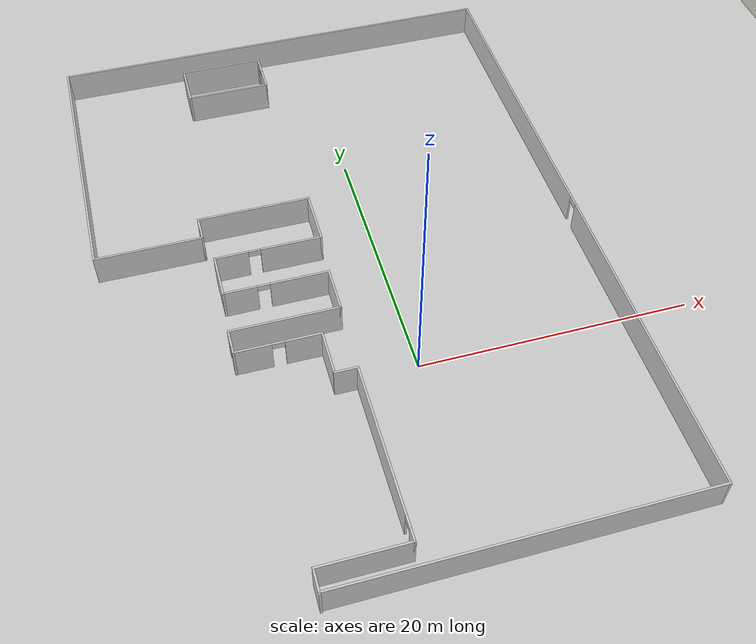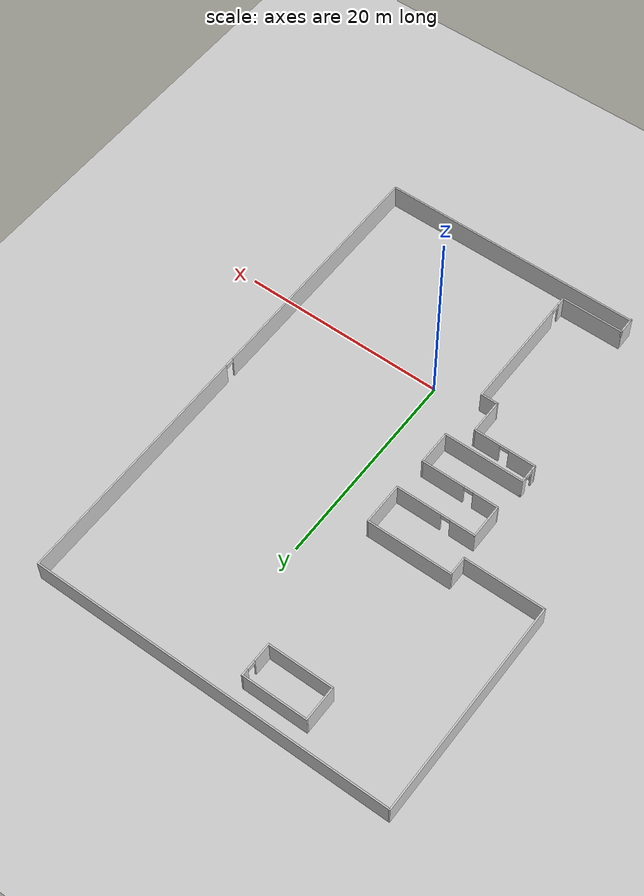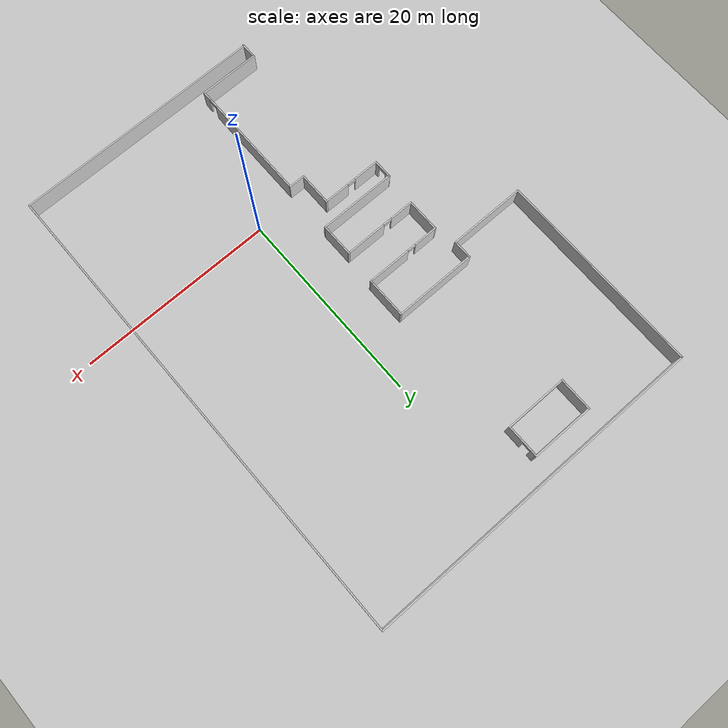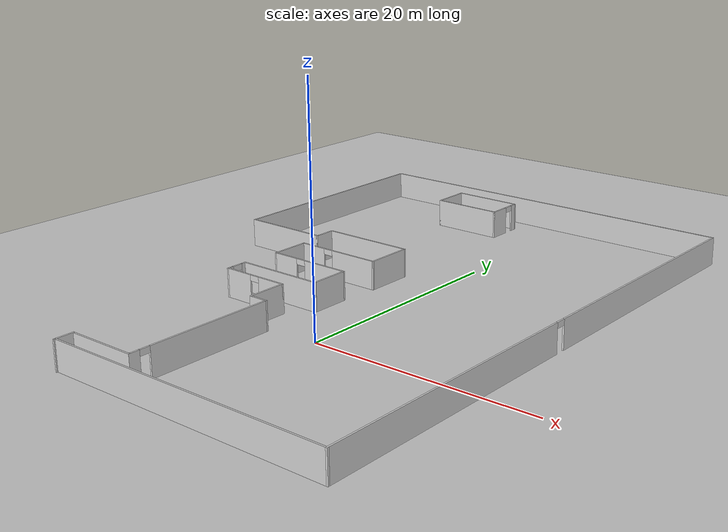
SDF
<sdf version="1.7">
 <world name="default">
  <plugin name="ignition::gazebo::systems::Physics" filename="ignition-gazebo-physics-system"/>
  <plugin name="ignition::gazebo::systems::UserCommands" filename="ignition-gazebo-user-commands-system"/>
  <plugin name="ignition::gazebo::systems::SceneBroadcaster" filename="ignition-gazebo-scene-broadcaster-system"/>
  <plugin name="ignition::gazebo::systems::Contact" filename="ignition-gazebo-contact-system"/>
  <light name="sun" type="directional">
   <pose>0 0 10 0 -0 0</pose>
   <diffuse>0.8 0.8 0.8 1</diffuse>
   <specular>0.2 0.2 0.2 1</specular>
   <attenuation>
    <range>1000</range>
    <constant>0.9</constant>
    <linear>0.01</linear>
    <quadratic>0.001</quadratic>
   </attenuation>
   <direction>-0.5 0.1 -0.9</direction>
   <spot><inner_angle>0</inner_angle><outer_angle>0</outer_angle><falloff>0</falloff></spot>
  </light>
  <model name="ground_plane">
   <static>1</static>
   <link name="link">
    <collision name="collision">
     <geometry><plane><normal>0 0 1</normal><size>100 100</size></plane></geometry>
     <surface><friction><ode><mu>100</mu><mu2>50</mu2></ode></friction></surface>
    </collision>
    <visual name="visual">
     <cast_shadows>0</cast_shadows>
     <geometry><plane><normal>0 0 1</normal><size>100 100</size></plane></geometry>
     <material>
      <ambient>0.8 0.8 0.8 1</ambient>
      <diffuse>0.8 0.8 0.8 1</diffuse>
      <specular>0.8 0.8 0.8 1</specular>
     </material>
    </visual>
   </link>
  </model>
  <gravity>0 0 -9.8</gravity>
  <magnetic_field>6e-06 2.3e-05 -4.2e-05</magnetic_field>
  <atmosphere type="adiabatic"/>
  <physics type="ode">
   <max_step_size>0.001</max_step_size>
   <real_time_factor>1</real_time_factor>
   <real_time_update_rate>1000</real_time_update_rate>
  </physics>
  <scene><ambient>0.4 0.4 0.4 1</ambient><background>0.7 0.7 0.7 1</background><shadows>1</shadows></scene>
  <spherical_coordinates>
   <surface_model>EARTH_WGS84</surface_model>
   <latitude_deg>0</latitude_deg>
   <longitude_deg>0</longitude_deg>
   <elevation>0</elevation>
   <heading_deg>0</heading_deg>
  </spherical_coordinates>
  <model name="CDL_v1">
   <pose>-2.57885 9.76492 0 0 -0 0</pose>
   <link name="Wall_0">
    <collision name="Wall_0_Collision">
     <geometry><box><size>1.75 0.15 2.5</size></box></geometry>
     <pose>0 0 1.25 0 -0 0</pose>
    </collision>
    <visual name="Wall_0_Visual">
     <pose>0 0 1.25 0 -0 0</pose>
     <geometry><box><size>1.75 0.15 2.5</size></box></geometry>
     <material>
      <ambient>0.8 0.8 0.8 1</ambient>
      <diffuse>0.8 0.8 0.8 1</diffuse>
      <specular>0.8 0.8 0.8 1</specular>
      <ambient>1 1 1 1</ambient>
     </material>
     <meta><layer>0</layer></meta>
    </visual>
    <pose>-7.97485 -24.0501 0 0 -0 1.5708</pose>
   </link>
   <link name="Wall_1">
    <collision name="Wall_1_Collision">
     <geometry><box><size>6.25 0.15 2.5</size></box></geometry>
     <pose>0 0 1.25 0 -0 0</pose>
    </collision>
    <visual name="Wall_1_Visual">
     <pose>0 0 1.25 0 -0 0</pose>
     <geometry><box><size>6.25 0.15 2.5</size></box></geometry>
     <material>
      <ambient>0.8 0.8 0.8 1</ambient>
      <diffuse>0.8 0.8 0.8 1</diffuse>
      <specular>0.8 0.8 0.8 1</specular>
      <ambient>1 1 1 1</ambient>
     </material>
     <meta><layer>0</layer></meta>
    </visual>
    <pose>-4.92485 -23.2501 0 0 -0 0</pose>
   </link>
   <link name="Wall_10">
    <collision name="Wall_10_Collision">
     <geometry><box><size>3.5 0.15 2.5</size></box></geometry>
     <pose>0 0 1.25 0 -0 0</pose>
    </collision>
    <visual name="Wall_10_Visual">
     <pose>0 0 1.25 0 -0 0</pose>
     <geometry><box><size>3.5 0.15 2.5</size></box></geometry>
     <material>
      <ambient>0.8 0.8 0.8 1</ambient>
      <diffuse>0.8 0.8 0.8 1</diffuse>
      <specular>0.8 0.8 0.8 1</specular>
      <ambient>1 1 1 1</ambient>
     </material>
     <meta><layer>0</layer></meta>
    </visual>
    <pose>-9.32485 -0.175087 0 0 -0 1.5708</pose>
   </link>
   <link name="Wall_11">
    <pose>-5.39985 1.49991 0 0 -0 0</pose>
    <visual name="Wall_11_Visual_0">
     <pose>-2.73904 0 1.25 0 -0 0</pose>
     <geometry><box><size>2.52192 0.15 2.5</size></box></geometry>
     <material>
      <ambient>0.8 0.8 0.8 1</ambient>
      <diffuse>0.8 0.8 0.8 1</diffuse>
      <specular>0.8 0.8 0.8 1</specular>
      <ambient>1 1 1 1</ambient>
     </material>
     <meta><layer>0</layer></meta>
    </visual>
    <collision name="Wall_11_Collision_0">
     <geometry><box><size>2.52192 0.15 2.5</size></box></geometry>
     <pose>-2.73904 0 1.25 0 -0 0</pose>
    </collision>
    <visual name="Wall_11_Visual_1">
     <pose>1.71096 0 1.25 0 -0 0</pose>
     <geometry><box><size>4.57808 0.15 2.5</size></box></geometry>
     <material>
      <ambient>0.8 0.8 0.8 1</ambient>
      <diffuse>0.8 0.8 0.8 1</diffuse>
      <specular>0.8 0.8 0.8 1</specular>
      <ambient>1 1 1 1</ambient>
     </material>
     <meta><layer>0</layer></meta>
    </visual>
    <collision name="Wall_11_Collision_1">
     <geometry><box><size>4.57808 0.15 2.5</size></box></geometry>
     <pose>1.71096 0 1.25 0 -0 0</pose>
    </collision>
    <visual name="Wall_11_Visual_2">
     <pose>-1.02808 0 2.25 0 -0 0</pose>
     <geometry><box><size>0.9 0.15 0.5</size></box></geometry>
     <material>
      <ambient>0.8 0.8 0.8 1</ambient>
      <diffuse>0.8 0.8 0.8 1</diffuse>
      <specular>0.8 0.8 0.8 1</specular>
      <ambient>1 1 1 1</ambient>
     </material>
     <meta><layer>0</layer></meta>
    </visual>
    <collision name="Wall_11_Collision_2">
     <geometry><box><size>0.9 0.15 0.5</size></box></geometry>
     <pose>-1.02808 0 2.25 0 -0 0</pose>
    </collision>
   </link>
   <link name="Wall_12">
    <collision name="Wall_12_Collision">
     <geometry><box><size>4.25 0.15 2.5</size></box></geometry>
     <pose>0 0 1.25 0 -0 0</pose>
    </collision>
    <visual name="Wall_12_Visual">
     <pose>0 0 1.25 0 -0 0</pose>
     <geometry><box><size>4.25 0.15 2.5</size></box></geometry>
     <material>
      <ambient>0.8 0.8 0.8 1</ambient>
      <diffuse>0.8 0.8 0.8 1</diffuse>
      <specular>0.8 0.8 0.8 1</specular>
      <ambient>1 1 1 1</ambient>
     </material>
     <meta><layer>0</layer></meta>
    </visual>
    <pose>-1.47486 3.54991 0 0 -0 1.5708</pose>
   </link>
   <link name="Wall_13">
    <collision name="Wall_13_Collision">
     <geometry><box><size>8.5 0.15 2.5</size></box></geometry>
     <pose>0 0 1.25 0 -0 0</pose>
    </collision>
    <visual name="Wall_13_Visual">
     <pose>0 0 1.25 0 -0 0</pose>
     <geometry><box><size>8.5 0.15 2.5</size></box></geometry>
     <material>
      <ambient>0.8 0.8 0.8 1</ambient>
      <diffuse>0.8 0.8 0.8 1</diffuse>
      <specular>0.8 0.8 0.8 1</specular>
      <ambient>1 1 1 1</ambient>
     </material>
     <meta><layer>0</layer></meta>
    </visual>
    <pose>-5.64985 5.59991 0 0 -0 3.14159</pose>
   </link>
   <link name="Wall_14">
    <collision name="Wall_14_Collision">
     <geometry><box><size>2 0.15 2.5</size></box></geometry>
     <pose>0 0 1.25 0 -0 0</pose>
    </collision>
    <visual name="Wall_14_Visual">
     <pose>0 0 1.25 0 -0 0</pose>
     <geometry><box><size>2 0.15 2.5</size></box></geometry>
     <material>
      <ambient>0.8 0.8 0.8 1</ambient>
      <diffuse>0.8 0.8 0.8 1</diffuse>
      <specular>0.8 0.8 0.8 1</specular>
      <ambient>1 1 1 1</ambient>
     </material>
     <meta><layer>0</layer></meta>
    </visual>
    <pose>-9.82485 4.67491 0 0 -0 -1.5708</pose>
   </link>
   <link name="Wall_15">
    <collision name="Wall_15_Collision">
     <geometry><box><size>8 0.15 2.5</size></box></geometry>
     <pose>0 0 1.25 0 -0 0</pose>
    </collision>
    <visual name="Wall_15_Visual">
     <pose>0 0 1.25 0 -0 0</pose>
     <geometry><box><size>8 0.15 2.5</size></box></geometry>
     <material>
      <ambient>0.8 0.8 0.8 1</ambient>
      <diffuse>0.8 0.8 0.8 1</diffuse>
      <specular>0.8 0.8 0.8 1</specular>
      <ambient>1 1 1 1</ambient>
     </material>
     <meta><layer>0</layer></meta>
    </visual>
    <pose>-13.75 3.75 0 0 -0 3.14157</pose>
   </link>
   <link name="Wall_16">
    <collision name="Wall_16_Collision">
     <geometry><box><size>21.25 0.15 2.5</size></box></geometry>
     <pose>0 0 1.25 0 -0 0</pose>
    </collision>
    <visual name="Wall_16_Visual">
     <pose>0 0 1.25 0 -0 0</pose>
     <geometry><box><size>21.25 0.15 2.5</size></box></geometry>
     <material>
      <ambient>0.8 0.8 0.8 1</ambient>
      <diffuse>0.8 0.8 0.8 1</diffuse>
      <specular>0.8 0.8 0.8 1</specular>
      <ambient>1 1 1 1</ambient>
     </material>
     <meta><layer>0</layer></meta>
    </visual>
    <pose>-17.6751 14.3001 0 0 -0 1.5708</pose>
   </link>
   <link name="Wall_17">
    <collision name="Wall_17_Collision">
     <geometry><box><size>35.5 0.15 2.5</size></box></geometry>
     <pose>0 0 1.25 0 -0 0</pose>
    </collision>
    <visual name="Wall_17_Visual">
     <pose>0 0 1.25 0 -0 0</pose>
     <geometry><box><size>35.5 0.15 2.5</size></box></geometry>
     <material>
      <ambient>0.8 0.8 0.8 1</ambient>
      <diffuse>0.8 0.8 0.8 1</diffuse>
      <specular>0.8 0.8 0.8 1</specular>
      <ambient>1 1 1 1</ambient>
     </material>
     <meta><layer>0</layer></meta>
    </visual>
    <pose>-1e-06 24.85 0 0 -0 -5e-06</pose>
   </link>
   <link name="Wall_18">
    <pose>17.6751 0.049912 0 0 -0 -1.5708</pose>
    <visual name="Wall_18_Visual_0">
     <pose>-12.621 0 1.25 0 -0 0</pose>
     <geometry><box><size>24.5079 0.15 2.5</size></box></geometry>
     <material>
      <ambient>0.8 0.8 0.8 1</ambient>
      <diffuse>0.8 0.8 0.8 1</diffuse>
      <specular>0.8 0.8 0.8 1</specular>
      <ambient>1 1 1 1</ambient>
     </material>
     <meta><layer>0</layer></meta>
    </visual>
    <collision name="Wall_18_Collision_0">
     <geometry><box><size>24.5079 0.15 2.5</size></box></geometry>
     <pose>-12.621 0 1.25 0 -0 0</pose>
    </collision>
    <visual name="Wall_18_Visual_1">
     <pose>12.704 0 1.25 0 -0 0</pose>
     <geometry><box><size>24.3421 0.15 2.5</size></box></geometry>
     <material>
      <ambient>0.8 0.8 0.8 1</ambient>
      <diffuse>0.8 0.8 0.8 1</diffuse>
      <specular>0.8 0.8 0.8 1</specular>
      <ambient>1 1 1 1</ambient>
     </material>
     <meta><layer>0</layer></meta>
    </visual>
    <collision name="Wall_18_Collision_1">
     <geometry><box><size>24.3421 0.15 2.5</size></box></geometry>
     <pose>12.704 0 1.25 0 -0 0</pose>
    </collision>
    <visual name="Wall_18_Visual_2">
     <pose>0.082915 0 2.25 0 -0 0</pose>
     <geometry><box><size>0.9 0.15 0.5</size></box></geometry>
     <material>
      <ambient>0.8 0.8 0.8 1</ambient>
      <diffuse>0.8 0.8 0.8 1</diffuse>
      <specular>0.8 0.8 0.8 1</specular>
      <ambient>1 1 1 1</ambient>
     </material>
     <meta><layer>0</layer></meta>
    </visual>
    <collision name="Wall_18_Collision_2">
     <geometry><box><size>0.9 0.15 0.5</size></box></geometry>
     <pose>0.082915 0 2.25 0 -0 0</pose>
    </collision>
   </link>
   <link name="Wall_19">
    <collision name="Wall_19_Collision">
     <geometry><box><size>25.75 0.15 2.5</size></box></geometry>
     <pose>0 0 1.25 0 -0 0</pose>
    </collision>
    <visual name="Wall_19_Visual">
     <pose>0 0 1.25 0 -0 0</pose>
     <geometry><box><size>25.75 0.15 2.5</size></box></geometry>
     <material>
      <ambient>0.8 0.8 0.8 1</ambient>
      <diffuse>0.8 0.8 0.8 1</diffuse>
      <specular>0.8 0.8 0.8 1</specular>
      <ambient>1 1 1 1</ambient>
     </material>
     <meta><layer>0</layer></meta>
    </visual>
    <pose>4.87514 -24.7501 0 0 -0 3.14159</pose>
   </link>
   <link name="Wall_2">
    <pose>-1.87485 -16.8251 0 0 -0 1.5708</pose>
    <visual name="Wall_2_Visual_0">
     <pose>-6.02926 0 1.25 0 -0 0</pose>
     <geometry><box><size>0.941485 0.15 2.5</size></box></geometry>
     <material>
      <ambient>0.8 0.8 0.8 1</ambient>
      <diffuse>0.8 0.8 0.8 1</diffuse>
      <specular>0.8 0.8 0.8 1</specular>
      <ambient>1 1 1 1</ambient>
     </material>
     <meta><layer>0</layer></meta>
    </visual>
    <collision name="Wall_2_Collision_0">
     <geometry><box><size>0.941485 0.15 2.5</size></box></geometry>
     <pose>-6.02926 0 1.25 0 -0 0</pose>
    </collision>
    <visual name="Wall_2_Visual_1">
     <pose>0.920742 0 1.25 0 -0 0</pose>
     <geometry><box><size>11.1585 0.15 2.5</size></box></geometry>
     <material>
      <ambient>0.8 0.8 0.8 1</ambient>
      <diffuse>0.8 0.8 0.8 1</diffuse>
      <specular>0.8 0.8 0.8 1</specular>
      <ambient>1 1 1 1</ambient>
     </material>
     <meta><layer>0</layer></meta>
    </visual>
    <collision name="Wall_2_Collision_1">
     <geometry><box><size>11.1585 0.15 2.5</size></box></geometry>
     <pose>0.920742 0 1.25 0 -0 0</pose>
    </collision>
    <visual name="Wall_2_Visual_2">
     <pose>-5.10851 0 2.25 0 -0 0</pose>
     <geometry><box><size>0.9 0.15 0.5</size></box></geometry>
     <material>
      <ambient>0.8 0.8 0.8 1</ambient>
      <diffuse>0.8 0.8 0.8 1</diffuse>
      <specular>0.8 0.8 0.8 1</specular>
      <ambient>1 1 1 1</ambient>
     </material>
     <meta><layer>0</layer></meta>
    </visual>
    <collision name="Wall_2_Collision_2">
     <geometry><box><size>0.9 0.15 0.5</size></box></geometry>
     <pose>-5.10851 0 2.25 0 -0 0</pose>
    </collision>
   </link>
   <link name="Wall_21">
    <collision name="Wall_21_Collision">
     <geometry><box><size>3.5 0.15 2.5</size></box></geometry>
     <pose>0 0 1.25 0 -0 0</pose>
    </collision>
    <visual name="Wall_21_Visual">
     <pose>0 0 1.25 0 -0 0</pose>
     <geometry><box><size>3.5 0.15 2.5</size></box></geometry>
     <material>
      <ambient>0.8 0.8 0.8 1</ambient>
      <diffuse>0.8 0.8 0.8 1</diffuse>
      <specular>0.8 0.8 0.8 1</specular>
      <ambient>1 1 1 1</ambient>
     </material>
     <meta><layer>0</layer></meta>
    </visual>
    <pose>-8.19061 21.0795 0 0 -0 -1.5708</pose>
   </link>
   <link name="Wall_22">
    <collision name="Wall_22_Collision">
     <geometry><box><size>6.5 0.15 2.5</size></box></geometry>
     <pose>0 0 1.25 0 -0 0</pose>
    </collision>
    <visual name="Wall_22_Visual">
     <pose>0 0 1.25 0 -0 0</pose>
     <geometry><box><size>6.5 0.15 2.5</size></box></geometry>
     <material>
      <ambient>0.8 0.8 0.8 1</ambient>
      <diffuse>0.8 0.8 0.8 1</diffuse>
      <specular>0.8 0.8 0.8 1</specular>
      <ambient>1 1 1 1</ambient>
     </material>
     <meta><layer>0</layer></meta>
    </visual>
    <pose>-5.01561 19.4045 0 0 -0 0</pose>
   </link>
   <link name="Wall_23">
    <pose>-1.84061 21.0795 0 0 -0 1.5708</pose>
    <visual name="Wall_23_Visual_0">
     <pose>-0.805566 0 1.25 0 -0 0</pose>
     <geometry><box><size>1.88887 0.15 2.5</size></box></geometry>
     <material>
      <ambient>0.8 0.8 0.8 1</ambient>
      <diffuse>0.8 0.8 0.8 1</diffuse>
      <specular>0.8 0.8 0.8 1</specular>
      <ambient>1 1 1 1</ambient>
     </material>
     <meta><layer>0</layer></meta>
    </visual>
    <collision name="Wall_23_Collision_0">
     <geometry><box><size>1.88887 0.15 2.5</size></box></geometry>
     <pose>-0.805566 0 1.25 0 -0 0</pose>
    </collision>
    <visual name="Wall_23_Visual_1">
     <pose>1.39443 0 1.25 0 -0 0</pose>
     <geometry><box><size>0.711133 0.15 2.5</size></box></geometry>
     <material>
      <ambient>0.8 0.8 0.8 1</ambient>
      <diffuse>0.8 0.8 0.8 1</diffuse>
      <specular>0.8 0.8 0.8 1</specular>
      <ambient>1 1 1 1</ambient>
     </material>
     <meta><layer>0</layer></meta>
    </visual>
    <collision name="Wall_23_Collision_1">
     <geometry><box><size>0.711133 0.15 2.5</size></box></geometry>
     <pose>1.39443 0 1.25 0 -0 0</pose>
    </collision>
    <visual name="Wall_23_Visual_2">
     <pose>0.588867 0 2.25 0 -0 0</pose>
     <geometry><box><size>0.9 0.15 0.5</size></box></geometry>
     <material>
      <ambient>0.8 0.8 0.8 1</ambient>
      <diffuse>0.8 0.8 0.8 1</diffuse>
      <specular>0.8 0.8 0.8 1</specular>
      <ambient>1 1 1 1</ambient>
     </material>
     <meta><layer>0</layer></meta>
    </visual>
    <collision name="Wall_23_Collision_2">
     <geometry><box><size>0.9 0.15 0.5</size></box></geometry>
     <pose>0.588867 0 2.25 0 -0 0</pose>
    </collision>
   </link>
   <link name="Wall_24">
    <collision name="Wall_24_Collision">
     <geometry><box><size>6.5 0.15 2.5</size></box></geometry>
     <pose>0 0 1.25 0 -0 0</pose>
    </collision>
    <visual name="Wall_24_Visual">
     <pose>0 0 1.25 0 -0 0</pose>
     <geometry><box><size>6.5 0.15 2.5</size></box></geometry>
     <material>
      <ambient>0.8 0.8 0.8 1</ambient>
      <diffuse>0.8 0.8 0.8 1</diffuse>
      <specular>0.8 0.8 0.8 1</specular>
      <ambient>1 1 1 1</ambient>
     </material>
     <meta><layer>0</layer></meta>
    </visual>
    <pose>-5.01561 22.7545 0 0 -0 3.14159</pose>
   </link>
   <link name="Wall_3">
    <collision name="Wall_3_Collision">
     <geometry><box><size>1.75 0.15 2.5</size></box></geometry>
     <pose>0 0 1.25 0 -0 0</pose>
    </collision>
    <visual name="Wall_3_Visual">
     <pose>0 0 1.25 0 -0 0</pose>
     <geometry><box><size>1.75 0.15 2.5</size></box></geometry>
     <material>
      <ambient>0.8 0.8 0.8 1</ambient>
      <diffuse>0.8 0.8 0.8 1</diffuse>
      <specular>0.8 0.8 0.8 1</specular>
      <ambient>1 1 1 1</ambient>
     </material>
     <meta><layer>0</layer></meta>
    </visual>
    <pose>-2.67485 -10.4001 0 0 -0 3.14159</pose>
   </link>
   <link name="Wall_4">
    <collision name="Wall_4_Collision">
     <geometry><box><size>3.5 0.15 2.5</size></box></geometry>
     <pose>0 0 1.25 0 -0 0</pose>
    </collision>
    <visual name="Wall_4_Visual">
     <pose>0 0 1.25 0 -0 0</pose>
     <geometry><box><size>3.5 0.15 2.5</size></box></geometry>
     <material>
      <ambient>0.8 0.8 0.8 1</ambient>
      <diffuse>0.8 0.8 0.8 1</diffuse>
      <specular>0.8 0.8 0.8 1</specular>
      <ambient>1 1 1 1</ambient>
     </material>
     <meta><layer>0</layer></meta>
    </visual>
    <pose>-3.47485 -8.72509 0 0 -0 1.5708</pose>
   </link>
   <link name="Wall_5">
    <pose>-6.52485 -7.05009 0 0 -0 3.14159</pose>
    <visual name="Wall_5_Visual_0">
     <pose>-1.79628 0 1.25 0 -0 0</pose>
     <geometry><box><size>2.65743 0.15 2.5</size></box></geometry>
     <material>
      <ambient>0.8 0.8 0.8 1</ambient>
      <diffuse>0.8 0.8 0.8 1</diffuse>
      <specular>0.8 0.8 0.8 1</specular>
      <ambient>1 1 1 1</ambient>
     </material>
     <meta><layer>0</layer></meta>
    </visual>
    <collision name="Wall_5_Collision_0">
     <geometry><box><size>2.65743 0.15 2.5</size></box></geometry>
     <pose>-1.79628 0 1.25 0 -0 0</pose>
    </collision>
    <visual name="Wall_5_Visual_1">
     <pose>1.77872 0 1.25 0 -0 0</pose>
     <geometry><box><size>2.69257 0.15 2.5</size></box></geometry>
     <material>
      <ambient>0.8 0.8 0.8 1</ambient>
      <diffuse>0.8 0.8 0.8 1</diffuse>
      <specular>0.8 0.8 0.8 1</specular>
      <ambient>1 1 1 1</ambient>
     </material>
     <meta><layer>0</layer></meta>
    </visual>
    <collision name="Wall_5_Collision_1">
     <geometry><box><size>2.69257 0.15 2.5</size></box></geometry>
     <pose>1.77872 0 1.25 0 -0 0</pose>
    </collision>
    <visual name="Wall_5_Visual_2">
     <pose>-0.017567 0 2.25 0 -0 0</pose>
     <geometry><box><size>0.9 0.15 0.5</size></box></geometry>
     <material>
      <ambient>0.8 0.8 0.8 1</ambient>
      <diffuse>0.8 0.8 0.8 1</diffuse>
      <specular>0.8 0.8 0.8 1</specular>
      <ambient>1 1 1 1</ambient>
     </material>
     <meta><layer>0</layer></meta>
    </visual>
    <collision name="Wall_5_Collision_2">
     <geometry><box><size>0.9 0.15 0.5</size></box></geometry>
     <pose>-0.017567 0 2.25 0 -0 0</pose>
    </collision>
   </link>
   <link name="Wall_6">
    <pose>-9.57485 -6.12509 0 0 -0 1.5708</pose>
    <visual name="Wall_6_Visual_0">
     <pose>-0.714095 0 1.25 0 -0 0</pose>
     <geometry><box><size>0.57181 0.15 2.5</size></box></geometry>
     <material>
      <ambient>0.8 0.8 0.8 1</ambient>
      <diffuse>0.8 0.8 0.8 1</diffuse>
      <specular>0.8 0.8 0.8 1</specular>
      <ambient>1 1 1 1</ambient>
     </material>
     <meta><layer>0</layer></meta>
    </visual>
    <collision name="Wall_6_Collision_0">
     <geometry><box><size>0.57181 0.15 2.5</size></box></geometry>
     <pose>-0.714095 0 1.25 0 -0 0</pose>
    </collision>
    <visual name="Wall_6_Visual_1">
     <pose>0.735905 0 1.25 0 -0 0</pose>
     <geometry><box><size>0.52819 0.15 2.5</size></box></geometry>
     <material>
      <ambient>0.8 0.8 0.8 1</ambient>
      <diffuse>0.8 0.8 0.8 1</diffuse>
      <specular>0.8 0.8 0.8 1</specular>
      <ambient>1 1 1 1</ambient>
     </material>
     <meta><layer>0</layer></meta>
    </visual>
    <collision name="Wall_6_Collision_1">
     <geometry><box><size>0.52819 0.15 2.5</size></box></geometry>
     <pose>0.735905 0 1.25 0 -0 0</pose>
    </collision>
    <visual name="Wall_6_Visual_2">
     <pose>0.02181 0 2.25 0 -0 0</pose>
     <geometry><box><size>0.9 0.15 0.5</size></box></geometry>
     <material>
      <ambient>0.8 0.8 0.8 1</ambient>
      <diffuse>0.8 0.8 0.8 1</diffuse>
      <specular>0.8 0.8 0.8 1</specular>
      <ambient>1 1 1 1</ambient>
     </material>
     <meta><layer>0</layer></meta>
    </visual>
    <collision name="Wall_6_Collision_2">
     <geometry><box><size>0.9 0.15 0.5</size></box></geometry>
     <pose>0.02181 0 2.25 0 -0 0</pose>
    </collision>
   </link>
   <link name="Wall_7">
    <collision name="Wall_7_Collision">
     <geometry><box><size>8 0.15 2.5</size></box></geometry>
     <pose>0 0 1.25 0 -0 0</pose>
    </collision>
    <visual name="Wall_7_Visual">
     <pose>0 0 1.25 0 -0 0</pose>
     <geometry><box><size>8 0.15 2.5</size></box></geometry>
     <material>
      <ambient>0.8 0.8 0.8 1</ambient>
      <diffuse>0.8 0.8 0.8 1</diffuse>
      <specular>0.8 0.8 0.8 1</specular>
      <ambient>1 1 1 1</ambient>
     </material>
     <meta><layer>0</layer></meta>
    </visual>
    <pose>-5.64985 -5.20009 0 0 -0 0</pose>
   </link>
   <link name="Wall_8">
    <collision name="Wall_8_Collision">
     <geometry><box><size>3.5 0.15 2.5</size></box></geometry>
     <pose>0 0 1.25 0 -0 0</pose>
    </collision>
    <visual name="Wall_8_Visual">
     <pose>0 0 1.25 0 -0 0</pose>
     <geometry><box><size>3.5 0.15 2.5</size></box></geometry>
     <material>
      <ambient>0.8 0.8 0.8 1</ambient>
      <diffuse>0.8 0.8 0.8 1</diffuse>
      <specular>0.8 0.8 0.8 1</specular>
      <ambient>1 1 1 1</ambient>
     </material>
     <meta><layer>0</layer></meta>
    </visual>
    <pose>-1.72486 -3.52509 0 0 -0 1.5708</pose>
   </link>
   <link name="Wall_9">
    <pose>-5.52485 -1.85009 0 0 -0 3.14159</pose>
    <visual name="Wall_9_Visual_0">
     <pose>-1.71096 0 1.25 0 -0 0</pose>
     <geometry><box><size>4.32808 0.15 2.5</size></box></geometry>
     <material>
      <ambient>0.8 0.8 0.8 1</ambient>
      <diffuse>0.8 0.8 0.8 1</diffuse>
      <specular>0.8 0.8 0.8 1</specular>
      <ambient>1 1 1 1</ambient>
     </material>
     <meta><layer>0</layer></meta>
    </visual>
    <collision name="Wall_9_Collision_0">
     <geometry><box><size>4.32808 0.15 2.5</size></box></geometry>
     <pose>-1.71096 0 1.25 0 -0 0</pose>
    </collision>
    <visual name="Wall_9_Visual_1">
     <pose>2.61404 0 1.25 0 -0 0</pose>
     <geometry><box><size>2.52192 0.15 2.5</size></box></geometry>
     <material>
      <ambient>0.8 0.8 0.8 1</ambient>
      <diffuse>0.8 0.8 0.8 1</diffuse>
      <specular>0.8 0.8 0.8 1</specular>
      <ambient>1 1 1 1</ambient>
     </material>
     <meta><layer>0</layer></meta>
    </visual>
    <collision name="Wall_9_Collision_1">
     <geometry><box><size>2.52192 0.15 2.5</size></box></geometry>
     <pose>2.61404 0 1.25 0 -0 0</pose>
    </collision>
    <visual name="Wall_9_Visual_2">
     <pose>0.903084 0 2.25 0 -0 0</pose>
     <geometry><box><size>0.9 0.15 0.5</size></box></geometry>
     <material>
      <ambient>0.8 0.8 0.8 1</ambient>
      <diffuse>0.8 0.8 0.8 1</diffuse>
      <specular>0.8 0.8 0.8 1</specular>
      <ambient>1 1 1 1</ambient>
     </material>
     <meta><layer>0</layer></meta>
    </visual>
    <collision name="Wall_9_Collision_2">
     <geometry><box><size>0.9 0.15 0.5</size></box></geometry>
     <pose>0.903084 0 2.25 0 -0 0</pose>
    </collision>
   </link>
   <static>1</static>
  </model>
 </world>
</sdf>
